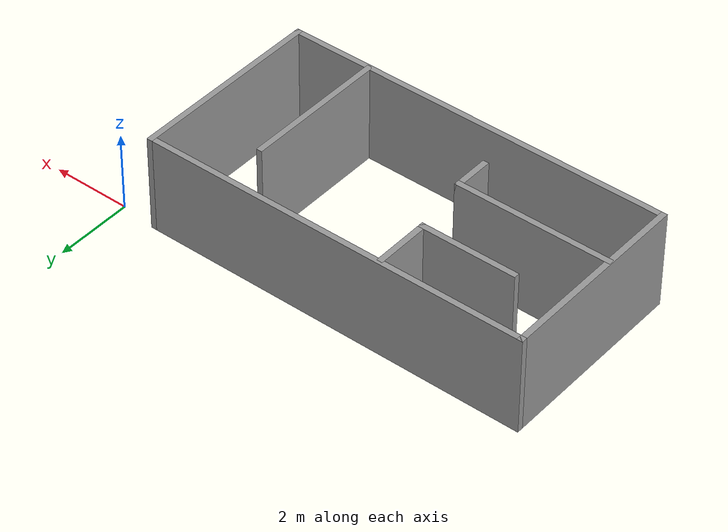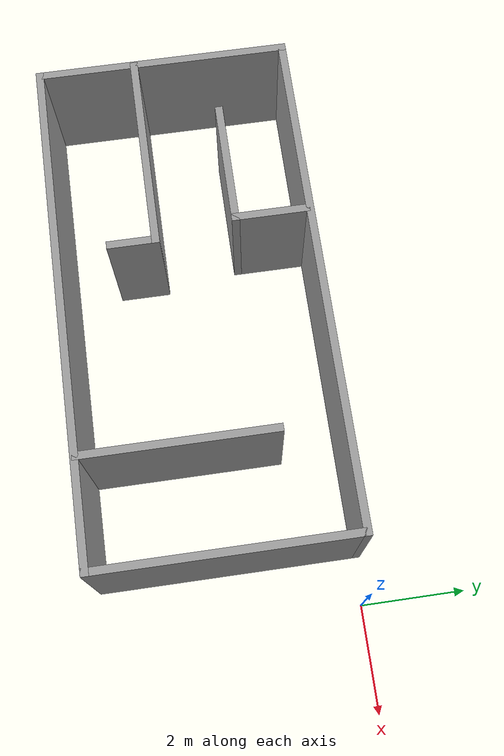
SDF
<?xml version='1.0'?>
<sdf version='1.7'>
  <model name='cb_room_model'>
    <pose>-5.45537 -2.36591 0 0 -0 0</pose>
    <link name='Wall_1'>
      <collision name='Wall_1_Collision'>
        <geometry>
          <box>
            <size>5 0.15 2.5</size>
          </box>
        </geometry>
        <pose>0 0 1.25 0 -0 0</pose>
      </collision>
      <visual name='Wall_1_Visual'>
        <pose>0 0 1.25 0 -0 0</pose>
        <geometry>
          <box>
            <size>5 0.15 2.5</size>
          </box>
        </geometry>
        <material>
          <script>
            <uri>file://media/materials/scripts/gazebo.material</uri>
            <name>Gazebo/Grey</name>
          </script>
          <ambient>1 1 1 1</ambient>
        </material>
        <meta>
          <layer>0</layer>
        </meta>
      </visual>
      <pose>-5.38037 -0 0 0 -0 -1.5708</pose>
    </link>
    <link name='Wall_10'>
      <collision name='Wall_10_Collision'>
        <geometry>
          <box>
            <size>2.5 0.15 2.5</size>
          </box>
        </geometry>
        <pose>0 0 1.25 0 -0 0</pose>
      </collision>
      <visual name='Wall_10_Visual'>
        <pose>0 0 1.25 0 -0 0</pose>
        <geometry>
          <box>
            <size>2.5 0.15 2.5</size>
          </box>
        </geometry>
        <material>
          <script>
            <uri>file://media/materials/scripts/gazebo.material</uri>
            <name>Gazebo/Grey</name>
          </script>
          <ambient>1 1 1 1</ambient>
        </material>
        <meta>
          <layer>0</layer>
        </meta>
      </visual>
      <pose>-2.93493 0.994546 0 0 -0 3.14159</pose>
    </link>
    <link name='Wall_14'>
      <collision name='Wall_14_Collision'>
        <geometry>
          <box>
            <size>3.75 0.15 2.5</size>
          </box>
        </geometry>
        <pose>0 0 1.25 0 -0 0</pose>
      </collision>
      <visual name='Wall_14_Visual'>
        <pose>0 0 1.25 0 -0 0</pose>
        <geometry>
          <box>
            <size>3.75 0.15 2.5</size>
          </box>
        </geometry>
        <material>
          <script>
            <uri>file://media/materials/scripts/gazebo.material</uri>
            <name>Gazebo/Grey</name>
          </script>
          <ambient>1 1 1 1</ambient>
        </material>
        <meta>
          <layer>0</layer>
        </meta>
      </visual>
      <pose>2.43819 -0.592913 0 0 -0 1.5708</pose>
    </link>
    <link name='Wall_2'>
      <collision name='Wall_2_Collision'>
        <geometry>
          <box>
            <size>10 0.15 2.5</size>
          </box>
        </geometry>
        <pose>0 0 1.25 0 -0 0</pose>
      </collision>
      <visual name='Wall_2_Visual'>
        <pose>0 0 1.25 0 -0 0</pose>
        <geometry>
          <box>
            <size>10 0.15 2.5</size>
          </box>
        </geometry>
        <material>
          <script>
            <uri>file://media/materials/scripts/gazebo.material</uri>
            <name>Gazebo/Grey</name>
          </script>
          <ambient>1 1 1 1</ambient>
        </material>
        <meta>
          <layer>0</layer>
        </meta>
      </visual>
      <pose>-0.455373 -2.425 0 0 -0 0</pose>
    </link>
    <link name='Wall_3'>
      <collision name='Wall_3_Collision'>
        <geometry>
          <box>
            <size>5 0.15 2.5</size>
          </box>
        </geometry>
        <pose>0 0 1.25 0 -0 0</pose>
      </collision>
      <visual name='Wall_3_Visual'>
        <pose>0 0 1.25 0 -0 0</pose>
        <geometry>
          <box>
            <size>5 0.15 2.5</size>
          </box>
        </geometry>
        <material>
          <script>
            <uri>file://media/materials/scripts/gazebo.material</uri>
            <name>Gazebo/Grey</name>
          </script>
          <ambient>1 1 1 1</ambient>
        </material>
        <meta>
          <layer>0</layer>
        </meta>
      </visual>
      <pose>4.46963 -0 0 0 -0 1.5708</pose>
    </link>
    <link name='Wall_4'>
      <collision name='Wall_4_Collision'>
        <geometry>
          <box>
            <size>10 0.15 2.5</size>
          </box>
        </geometry>
        <pose>0 0 1.25 0 -0 0</pose>
      </collision>
      <visual name='Wall_4_Visual'>
        <pose>0 0 1.25 0 -0 0</pose>
        <geometry>
          <box>
            <size>10 0.15 2.5</size>
          </box>
        </geometry>
        <material>
          <script>
            <uri>file://media/materials/scripts/gazebo.material</uri>
            <name>Gazebo/Grey</name>
          </script>
          <ambient>1 1 1 1</ambient>
        </material>
        <meta>
          <layer>0</layer>
        </meta>
      </visual>
      <pose>-0.455373 2.425 0 0 -0 3.14159</pose>
    </link>
    <link name='Wall_6'>
      <collision name='Wall_6_Collision'>
        <geometry>
          <box>
            <size>4 0.15 2.5</size>
          </box>
        </geometry>
        <pose>0 0 1.25 0 -0 0</pose>
      </collision>
      <visual name='Wall_6_Visual'>
        <pose>0 0 1.25 0 -0 0</pose>
        <geometry>
          <box>
            <size>4 0.15 2.5</size>
          </box>
        </geometry>
        <material>
          <script>
            <uri>file://media/materials/scripts/gazebo.material</uri>
            <name>Gazebo/Grey</name>
          </script>
          <ambient>1 1 1 1</ambient>
        </material>
        <meta>
          <layer>0</layer>
        </meta>
      </visual>
      <pose>-3.43526 -0.551809 0 0 -0 0</pose>
    </link>
    <link name='Wall_7'>
      <collision name='Wall_7_Collision'>
        <geometry>
          <box>
            <size>1 0.15 2.5</size>
          </box>
        </geometry>
        <pose>0 0 1.25 0 -0 0</pose>
      </collision>
      <visual name='Wall_7_Visual'>
        <pose>0 0 1.25 0 -0 0</pose>
        <geometry>
          <box>
            <size>1 0.15 2.5</size>
          </box>
        </geometry>
        <material>
          <script>
            <uri>file://media/materials/scripts/gazebo.material</uri>
            <name>Gazebo/Grey</name>
          </script>
          <ambient>1 1 1 1</ambient>
        </material>
        <meta>
          <layer>0</layer>
        </meta>
      </visual>
      <pose>-1.51026 -0.976809 0 0 -0 -1.5708</pose>
    </link>
    <link name='Wall_9'>
      <collision name='Wall_9_Collision'>
        <geometry>
          <box>
            <size>1.5 0.15 2.5</size>
          </box>
        </geometry>
        <pose>0 0 1.25 0 -0 0</pose>
      </collision>
      <visual name='Wall_9_Visual'>
        <pose>0 0 1.25 0 -0 0</pose>
        <geometry>
          <box>
            <size>1.5 0.15 2.5</size>
          </box>
        </geometry>
        <material>
          <script>
            <uri>file://media/materials/scripts/gazebo.material</uri>
            <name>Gazebo/Grey</name>
          </script>
          <ambient>1 1 1 1</ambient>
        </material>
        <meta>
          <layer>0</layer>
        </meta>
      </visual>
      <pose>-1.75993 1.66955 0 0 -0 -1.5708</pose>
    </link>
    <static>1</static>
  </model>
</sdf>
